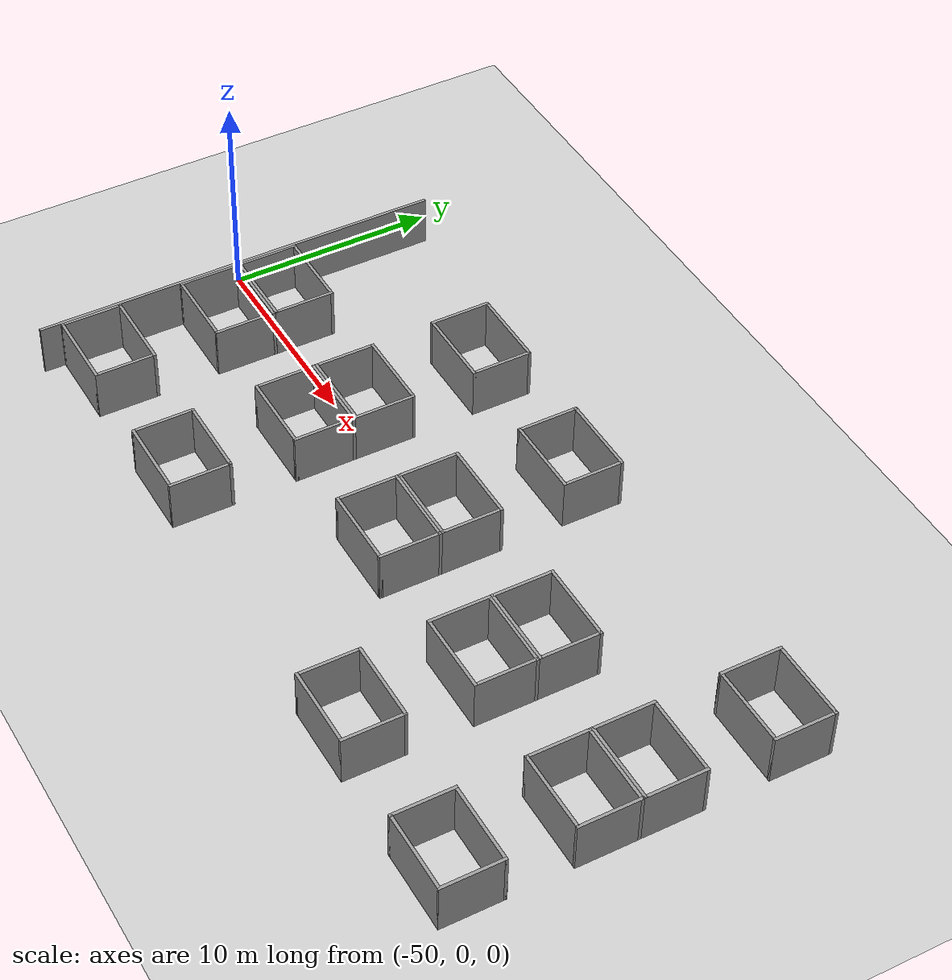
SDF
<sdf version="1.6">
 <world name="default">
  <model name="ground_plane">
   <static>1</static>
   <link name="link">
    <collision name="collision">
     <geometry><plane><normal>0 0 1</normal><size>105 105</size></plane></geometry>
     <surface>
      <contact><collide_bitmask>65535</collide_bitmask></contact>
      <friction><ode><mu>100</mu><mu2>50</mu2></ode></friction>
     </surface>
    </collision>
    <visual name="visual">
     <cast_shadows>0</cast_shadows>
     <geometry><plane><normal>0 0 1</normal><size>105 105</size></plane></geometry>
     <material>
      <script><uri>file://media/materials/scripts/gazebo.material</uri><name>Gazebo/Grey</name></script>
     </material>
    </visual>
   </link>
  </model>
  <model name="wall_v20m_0">
   <pose>-48.4193 -0.726683 0 0 -0 0</pose>
   <link name="Wall_35">
    <collision name="Wall_35_Collision">
     <geometry><box><size>20 0.15 2.5</size></box></geometry>
     <pose>0 0 1.25 0 -0 0</pose>
    </collision>
    <visual name="Wall_35_Visual">
     <pose>0 0 1.25 0 -0 0</pose>
     <geometry><box><size>20 0.15 2.5</size></box></geometry>
     <material>
      <script><uri>file://media/materials/scripts/gazebo.material</uri><name>Gazebo/Grey</name></script>
      <ambient>1 1 1 1</ambient>
     </material>
     <meta><layer>0</layer></meta>
    </visual>
    <pose>0 -0 0 0 -0 -1.5708</pose>
   </link>
   <static>1</static>
  </model>
  <model name="base3x4_40">
   <pose>-46.3508 -8.23033 0 0 -0 0</pose>
   <link name="Wall_18">
    <collision name="Wall_18_Collision">
     <geometry><box><size>3 0.15 2.5</size></box></geometry>
     <pose>0 0 1.25 0 -0 0</pose>
    </collision>
    <visual name="Wall_18_Visual">
     <pose>0 0 1.25 0 -0 0</pose>
     <geometry><box><size>3 0.15 2.5</size></box></geometry>
     <material>
      <script><uri>file://media/materials/scripts/gazebo.material</uri><name>Gazebo/Grey</name></script>
      <ambient>1 1 1 1</ambient>
     </material>
     <meta><layer>0</layer></meta>
    </visual>
    <pose>-1.925 -0 0 0 -0 -1.5708</pose>
   </link>
   <link name="Wall_19">
    <collision name="Wall_19_Collision">
     <geometry><box><size>4 0.15 2.5</size></box></geometry>
     <pose>0 0 1.25 0 -0 0</pose>
    </collision>
    <visual name="Wall_19_Visual">
     <pose>0 0 1.25 0 -0 0</pose>
     <geometry><box><size>4 0.15 2.5</size></box></geometry>
     <material>
      <script><uri>file://media/materials/scripts/gazebo.material</uri><name>Gazebo/Grey</name></script>
      <ambient>1 1 1 1</ambient>
     </material>
     <meta><layer>0</layer></meta>
    </visual>
    <pose>-0 -1.425 0 0 -0 0</pose>
   </link>
   <link name="Wall_20">
    <collision name="Wall_20_Collision">
     <geometry><box><size>3 0.15 2.5</size></box></geometry>
     <pose>0 0 1.25 0 -0 0</pose>
    </collision>
    <visual name="Wall_20_Visual">
     <pose>0 0 1.25 0 -0 0</pose>
     <geometry><box><size>3 0.15 2.5</size></box></geometry>
     <material>
      <script><uri>file://media/materials/scripts/gazebo.material</uri><name>Gazebo/Grey</name></script>
      <ambient>1 1 1 1</ambient>
     </material>
     <meta><layer>0</layer></meta>
    </visual>
    <pose>1.925 -0 0 0 -0 1.5708</pose>
   </link>
   <link name="Wall_21">
    <collision name="Wall_21_Collision">
     <geometry><box><size>4 0.15 2.5</size></box></geometry>
     <pose>0 0 1.25 0 -0 0</pose>
    </collision>
    <visual name="Wall_21_Visual">
     <pose>0 0 1.25 0 -0 0</pose>
     <geometry><box><size>4 0.15 2.5</size></box></geometry>
     <material>
      <script><uri>file://media/materials/scripts/gazebo.material</uri><name>Gazebo/Grey</name></script>
      <ambient>1 1 1 1</ambient>
     </material>
     <meta><layer>0</layer></meta>
    </visual>
    <pose>-0 1.425 0 0 -0 3.14159</pose>
   </link>
   <static>1</static>
  </model>
  <model name="base3x4_42">
   <pose>-46.3729 -2.24361 0 0 -0 0</pose>
   <link name="Wall_18">
    <collision name="Wall_18_Collision">
     <geometry><box><size>3 0.15 2.5</size></box></geometry>
     <pose>0 0 1.25 0 -0 0</pose>
    </collision>
    <visual name="Wall_18_Visual">
     <pose>0 0 1.25 0 -0 0</pose>
     <geometry><box><size>3 0.15 2.5</size></box></geometry>
     <material>
      <script><uri>file://media/materials/scripts/gazebo.material</uri><name>Gazebo/Grey</name></script>
      <ambient>1 1 1 1</ambient>
     </material>
     <meta><layer>0</layer></meta>
    </visual>
    <pose>-1.925 -0 0 0 -0 -1.5708</pose>
   </link>
   <link name="Wall_19">
    <collision name="Wall_19_Collision">
     <geometry><box><size>4 0.15 2.5</size></box></geometry>
     <pose>0 0 1.25 0 -0 0</pose>
    </collision>
    <visual name="Wall_19_Visual">
     <pose>0 0 1.25 0 -0 0</pose>
     <geometry><box><size>4 0.15 2.5</size></box></geometry>
     <material>
      <script><uri>file://media/materials/scripts/gazebo.material</uri><name>Gazebo/Grey</name></script>
      <ambient>1 1 1 1</ambient>
     </material>
     <meta><layer>0</layer></meta>
    </visual>
    <pose>-0 -1.425 0 0 -0 0</pose>
   </link>
   <link name="Wall_20">
    <collision name="Wall_20_Collision">
     <geometry><box><size>3 0.15 2.5</size></box></geometry>
     <pose>0 0 1.25 0 -0 0</pose>
    </collision>
    <visual name="Wall_20_Visual">
     <pose>0 0 1.25 0 -0 0</pose>
     <geometry><box><size>3 0.15 2.5</size></box></geometry>
     <material>
      <script><uri>file://media/materials/scripts/gazebo.material</uri><name>Gazebo/Grey</name></script>
      <ambient>1 1 1 1</ambient>
     </material>
     <meta><layer>0</layer></meta>
    </visual>
    <pose>1.925 -0 0 0 -0 1.5708</pose>
   </link>
   <link name="Wall_21">
    <collision name="Wall_21_Collision">
     <geometry><box><size>4 0.15 2.5</size></box></geometry>
     <pose>0 0 1.25 0 -0 0</pose>
    </collision>
    <visual name="Wall_21_Visual">
     <pose>0 0 1.25 0 -0 0</pose>
     <geometry><box><size>4 0.15 2.5</size></box></geometry>
     <material>
      <script><uri>file://media/materials/scripts/gazebo.material</uri><name>Gazebo/Grey</name></script>
      <ambient>1 1 1 1</ambient>
     </material>
     <meta><layer>0</layer></meta>
    </visual>
    <pose>-0 1.425 0 0 -0 3.14159</pose>
   </link>
   <static>1</static>
  </model>
  <model name="base3x4_43">
   <pose>-46.3734 0.757545 0 0 -0 0</pose>
   <link name="Wall_18">
    <collision name="Wall_18_Collision">
     <geometry><box><size>3 0.15 2.5</size></box></geometry>
     <pose>0 0 1.25 0 -0 0</pose>
    </collision>
    <visual name="Wall_18_Visual">
     <pose>0 0 1.25 0 -0 0</pose>
     <geometry><box><size>3 0.15 2.5</size></box></geometry>
     <material>
      <script><uri>file://media/materials/scripts/gazebo.material</uri><name>Gazebo/Grey</name></script>
      <ambient>1 1 1 1</ambient>
     </material>
     <meta><layer>0</layer></meta>
    </visual>
    <pose>-1.925 -0 0 0 -0 -1.5708</pose>
   </link>
   <link name="Wall_19">
    <collision name="Wall_19_Collision">
     <geometry><box><size>4 0.15 2.5</size></box></geometry>
     <pose>0 0 1.25 0 -0 0</pose>
    </collision>
    <visual name="Wall_19_Visual">
     <pose>0 0 1.25 0 -0 0</pose>
     <geometry><box><size>4 0.15 2.5</size></box></geometry>
     <material>
      <script><uri>file://media/materials/scripts/gazebo.material</uri><name>Gazebo/Grey</name></script>
      <ambient>1 1 1 1</ambient>
     </material>
     <meta><layer>0</layer></meta>
    </visual>
    <pose>-0 -1.425 0 0 -0 0</pose>
   </link>
   <link name="Wall_20">
    <collision name="Wall_20_Collision">
     <geometry><box><size>3 0.15 2.5</size></box></geometry>
     <pose>0 0 1.25 0 -0 0</pose>
    </collision>
    <visual name="Wall_20_Visual">
     <pose>0 0 1.25 0 -0 0</pose>
     <geometry><box><size>3 0.15 2.5</size></box></geometry>
     <material>
      <script><uri>file://media/materials/scripts/gazebo.material</uri><name>Gazebo/Grey</name></script>
      <ambient>1 1 1 1</ambient>
     </material>
     <meta><layer>0</layer></meta>
    </visual>
    <pose>1.925 -0 0 0 -0 1.5708</pose>
   </link>
   <link name="Wall_21">
    <collision name="Wall_21_Collision">
     <geometry><box><size>4 0.15 2.5</size></box></geometry>
     <pose>0 0 1.25 0 -0 0</pose>
    </collision>
    <visual name="Wall_21_Visual">
     <pose>0 0 1.25 0 -0 0</pose>
     <geometry><box><size>4 0.15 2.5</size></box></geometry>
     <material>
      <script><uri>file://media/materials/scripts/gazebo.material</uri><name>Gazebo/Grey</name></script>
      <ambient>1 1 1 1</ambient>
     </material>
     <meta><layer>0</layer></meta>
    </visual>
    <pose>-0 1.425 0 0 -0 3.14159</pose>
   </link>
   <static>1</static>
  </model>
  <model name="base3x4_60">
   <pose>-38.3722 -8.24435 0 0 -0 0</pose>
   <link name="Wall_18">
    <collision name="Wall_18_Collision">
     <geometry><box><size>3 0.15 2.5</size></box></geometry>
     <pose>0 0 1.25 0 -0 0</pose>
    </collision>
    <visual name="Wall_18_Visual">
     <pose>0 0 1.25 0 -0 0</pose>
     <geometry><box><size>3 0.15 2.5</size></box></geometry>
     <material>
      <script><uri>file://media/materials/scripts/gazebo.material</uri><name>Gazebo/Grey</name></script>
      <ambient>1 1 1 1</ambient>
     </material>
     <meta><layer>0</layer></meta>
    </visual>
    <pose>-1.925 -0 0 0 -0 -1.5708</pose>
   </link>
   <link name="Wall_19">
    <collision name="Wall_19_Collision">
     <geometry><box><size>4 0.15 2.5</size></box></geometry>
     <pose>0 0 1.25 0 -0 0</pose>
    </collision>
    <visual name="Wall_19_Visual">
     <pose>0 0 1.25 0 -0 0</pose>
     <geometry><box><size>4 0.15 2.5</size></box></geometry>
     <material>
      <script><uri>file://media/materials/scripts/gazebo.material</uri><name>Gazebo/Grey</name></script>
      <ambient>1 1 1 1</ambient>
     </material>
     <meta><layer>0</layer></meta>
    </visual>
    <pose>-0 -1.425 0 0 -0 0</pose>
   </link>
   <link name="Wall_20">
    <collision name="Wall_20_Collision">
     <geometry><box><size>3 0.15 2.5</size></box></geometry>
     <pose>0 0 1.25 0 -0 0</pose>
    </collision>
    <visual name="Wall_20_Visual">
     <pose>0 0 1.25 0 -0 0</pose>
     <geometry><box><size>3 0.15 2.5</size></box></geometry>
     <material>
      <script><uri>file://media/materials/scripts/gazebo.material</uri><name>Gazebo/Grey</name></script>
      <ambient>1 1 1 1</ambient>
     </material>
     <meta><layer>0</layer></meta>
    </visual>
    <pose>1.925 -0 0 0 -0 1.5708</pose>
   </link>
   <link name="Wall_21">
    <collision name="Wall_21_Collision">
     <geometry><box><size>4 0.15 2.5</size></box></geometry>
     <pose>0 0 1.25 0 -0 0</pose>
    </collision>
    <visual name="Wall_21_Visual">
     <pose>0 0 1.25 0 -0 0</pose>
     <geometry><box><size>4 0.15 2.5</size></box></geometry>
     <material>
      <script><uri>file://media/materials/scripts/gazebo.material</uri><name>Gazebo/Grey</name></script>
      <ambient>1 1 1 1</ambient>
     </material>
     <meta><layer>0</layer></meta>
    </visual>
    <pose>-0 1.425 0 0 -0 3.14159</pose>
   </link>
   <static>1</static>
  </model>
  <model name="base3x4_62">
   <pose>-38.3835 -2.2467 0 0 -0 0</pose>
   <link name="Wall_18">
    <collision name="Wall_18_Collision">
     <geometry><box><size>3 0.15 2.5</size></box></geometry>
     <pose>0 0 1.25 0 -0 0</pose>
    </collision>
    <visual name="Wall_18_Visual">
     <pose>0 0 1.25 0 -0 0</pose>
     <geometry><box><size>3 0.15 2.5</size></box></geometry>
     <material>
      <script><uri>file://media/materials/scripts/gazebo.material</uri><name>Gazebo/Grey</name></script>
      <ambient>1 1 1 1</ambient>
     </material>
     <meta><layer>0</layer></meta>
    </visual>
    <pose>-1.925 -0 0 0 -0 -1.5708</pose>
   </link>
   <link name="Wall_19">
    <collision name="Wall_19_Collision">
     <geometry><box><size>4 0.15 2.5</size></box></geometry>
     <pose>0 0 1.25 0 -0 0</pose>
    </collision>
    <visual name="Wall_19_Visual">
     <pose>0 0 1.25 0 -0 0</pose>
     <geometry><box><size>4 0.15 2.5</size></box></geometry>
     <material>
      <script><uri>file://media/materials/scripts/gazebo.material</uri><name>Gazebo/Grey</name></script>
      <ambient>1 1 1 1</ambient>
     </material>
     <meta><layer>0</layer></meta>
    </visual>
    <pose>-0 -1.425 0 0 -0 0</pose>
   </link>
   <link name="Wall_20">
    <collision name="Wall_20_Collision">
     <geometry><box><size>3 0.15 2.5</size></box></geometry>
     <pose>0 0 1.25 0 -0 0</pose>
    </collision>
    <visual name="Wall_20_Visual">
     <pose>0 0 1.25 0 -0 0</pose>
     <geometry><box><size>3 0.15 2.5</size></box></geometry>
     <material>
      <script><uri>file://media/materials/scripts/gazebo.material</uri><name>Gazebo/Grey</name></script>
      <ambient>1 1 1 1</ambient>
     </material>
     <meta><layer>0</layer></meta>
    </visual>
    <pose>1.925 -0 0 0 -0 1.5708</pose>
   </link>
   <link name="Wall_21">
    <collision name="Wall_21_Collision">
     <geometry><box><size>4 0.15 2.5</size></box></geometry>
     <pose>0 0 1.25 0 -0 0</pose>
    </collision>
    <visual name="Wall_21_Visual">
     <pose>0 0 1.25 0 -0 0</pose>
     <geometry><box><size>4 0.15 2.5</size></box></geometry>
     <material>
      <script><uri>file://media/materials/scripts/gazebo.material</uri><name>Gazebo/Grey</name></script>
      <ambient>1 1 1 1</ambient>
     </material>
     <meta><layer>0</layer></meta>
    </visual>
    <pose>-0 1.425 0 0 -0 3.14159</pose>
   </link>
   <static>1</static>
  </model>
  <model name="base3x4_63">
   <pose>-38.384 0.75217 0 0 -0 0</pose>
   <link name="Wall_18">
    <collision name="Wall_18_Collision">
     <geometry><box><size>3 0.15 2.5</size></box></geometry>
     <pose>0 0 1.25 0 -0 0</pose>
    </collision>
    <visual name="Wall_18_Visual">
     <pose>0 0 1.25 0 -0 0</pose>
     <geometry><box><size>3 0.15 2.5</size></box></geometry>
     <material>
      <script><uri>file://media/materials/scripts/gazebo.material</uri><name>Gazebo/Grey</name></script>
      <ambient>1 1 1 1</ambient>
     </material>
     <meta><layer>0</layer></meta>
    </visual>
    <pose>-1.925 -0 0 0 -0 -1.5708</pose>
   </link>
   <link name="Wall_19">
    <collision name="Wall_19_Collision">
     <geometry><box><size>4 0.15 2.5</size></box></geometry>
     <pose>0 0 1.25 0 -0 0</pose>
    </collision>
    <visual name="Wall_19_Visual">
     <pose>0 0 1.25 0 -0 0</pose>
     <geometry><box><size>4 0.15 2.5</size></box></geometry>
     <material>
      <script><uri>file://media/materials/scripts/gazebo.material</uri><name>Gazebo/Grey</name></script>
      <ambient>1 1 1 1</ambient>
     </material>
     <meta><layer>0</layer></meta>
    </visual>
    <pose>-0 -1.425 0 0 -0 0</pose>
   </link>
   <link name="Wall_20">
    <collision name="Wall_20_Collision">
     <geometry><box><size>3 0.15 2.5</size></box></geometry>
     <pose>0 0 1.25 0 -0 0</pose>
    </collision>
    <visual name="Wall_20_Visual">
     <pose>0 0 1.25 0 -0 0</pose>
     <geometry><box><size>3 0.15 2.5</size></box></geometry>
     <material>
      <script><uri>file://media/materials/scripts/gazebo.material</uri><name>Gazebo/Grey</name></script>
      <ambient>1 1 1 1</ambient>
     </material>
     <meta><layer>0</layer></meta>
    </visual>
    <pose>1.925 -0 0 0 -0 1.5708</pose>
   </link>
   <link name="Wall_21">
    <collision name="Wall_21_Collision">
     <geometry><box><size>4 0.15 2.5</size></box></geometry>
     <pose>0 0 1.25 0 -0 0</pose>
    </collision>
    <visual name="Wall_21_Visual">
     <pose>0 0 1.25 0 -0 0</pose>
     <geometry><box><size>4 0.15 2.5</size></box></geometry>
     <material>
      <script><uri>file://media/materials/scripts/gazebo.material</uri><name>Gazebo/Grey</name></script>
      <ambient>1 1 1 1</ambient>
     </material>
     <meta><layer>0</layer></meta>
    </visual>
    <pose>-0 1.425 0 0 -0 3.14159</pose>
   </link>
   <static>1</static>
  </model>
  <model name="base3x4_65">
   <pose>-38.4437 6.73627 0 0 -0 0</pose>
   <link name="Wall_18">
    <collision name="Wall_18_Collision">
     <geometry><box><size>3 0.15 2.5</size></box></geometry>
     <pose>0 0 1.25 0 -0 0</pose>
    </collision>
    <visual name="Wall_18_Visual">
     <pose>0 0 1.25 0 -0 0</pose>
     <geometry><box><size>3 0.15 2.5</size></box></geometry>
     <material>
      <script><uri>file://media/materials/scripts/gazebo.material</uri><name>Gazebo/Grey</name></script>
      <ambient>1 1 1 1</ambient>
     </material>
     <meta><layer>0</layer></meta>
    </visual>
    <pose>-1.925 -0 0 0 -0 -1.5708</pose>
   </link>
   <link name="Wall_19">
    <collision name="Wall_19_Collision">
     <geometry><box><size>4 0.15 2.5</size></box></geometry>
     <pose>0 0 1.25 0 -0 0</pose>
    </collision>
    <visual name="Wall_19_Visual">
     <pose>0 0 1.25 0 -0 0</pose>
     <geometry><box><size>4 0.15 2.5</size></box></geometry>
     <material>
      <script><uri>file://media/materials/scripts/gazebo.material</uri><name>Gazebo/Grey</name></script>
      <ambient>1 1 1 1</ambient>
     </material>
     <meta><layer>0</layer></meta>
    </visual>
    <pose>-0 -1.425 0 0 -0 0</pose>
   </link>
   <link name="Wall_20">
    <collision name="Wall_20_Collision">
     <geometry><box><size>3 0.15 2.5</size></box></geometry>
     <pose>0 0 1.25 0 -0 0</pose>
    </collision>
    <visual name="Wall_20_Visual">
     <pose>0 0 1.25 0 -0 0</pose>
     <geometry><box><size>3 0.15 2.5</size></box></geometry>
     <material>
      <script><uri>file://media/materials/scripts/gazebo.material</uri><name>Gazebo/Grey</name></script>
      <ambient>1 1 1 1</ambient>
     </material>
     <meta><layer>0</layer></meta>
    </visual>
    <pose>1.925 -0 0 0 -0 1.5708</pose>
   </link>
   <link name="Wall_21">
    <collision name="Wall_21_Collision">
     <geometry><box><size>4 0.15 2.5</size></box></geometry>
     <pose>0 0 1.25 0 -0 0</pose>
    </collision>
    <visual name="Wall_21_Visual">
     <pose>0 0 1.25 0 -0 0</pose>
     <geometry><box><size>4 0.15 2.5</size></box></geometry>
     <material>
      <script><uri>file://media/materials/scripts/gazebo.material</uri><name>Gazebo/Grey</name></script>
      <ambient>1 1 1 1</ambient>
     </material>
     <meta><layer>0</layer></meta>
    </visual>
    <pose>-0 1.425 0 0 -0 3.14159</pose>
   </link>
   <static>1</static>
  </model>
  <model name="base3x4_6">
   <pose>-30.4053 -2.27913 0 0 -0 0</pose>
   <link name="Wall_18">
    <collision name="Wall_18_Collision">
     <geometry><box><size>3 0.15 2.5</size></box></geometry>
     <pose>0 0 1.25 0 -0 0</pose>
    </collision>
    <visual name="Wall_18_Visual">
     <pose>0 0 1.25 0 -0 0</pose>
     <geometry><box><size>3 0.15 2.5</size></box></geometry>
     <material>
      <script><uri>file://media/materials/scripts/gazebo.material</uri><name>Gazebo/Grey</name></script>
      <ambient>1 1 1 1</ambient>
     </material>
     <meta><layer>0</layer></meta>
    </visual>
    <pose>-1.925 -0 0 0 -0 -1.5708</pose>
   </link>
   <link name="Wall_19">
    <collision name="Wall_19_Collision">
     <geometry><box><size>4 0.15 2.5</size></box></geometry>
     <pose>0 0 1.25 0 -0 0</pose>
    </collision>
    <visual name="Wall_19_Visual">
     <pose>0 0 1.25 0 -0 0</pose>
     <geometry><box><size>4 0.15 2.5</size></box></geometry>
     <material>
      <script><uri>file://media/materials/scripts/gazebo.material</uri><name>Gazebo/Grey</name></script>
      <ambient>1 1 1 1</ambient>
     </material>
     <meta><layer>0</layer></meta>
    </visual>
    <pose>-0 -1.425 0 0 -0 0</pose>
   </link>
   <link name="Wall_20">
    <collision name="Wall_20_Collision">
     <geometry><box><size>3 0.15 2.5</size></box></geometry>
     <pose>0 0 1.25 0 -0 0</pose>
    </collision>
    <visual name="Wall_20_Visual">
     <pose>0 0 1.25 0 -0 0</pose>
     <geometry><box><size>3 0.15 2.5</size></box></geometry>
     <material>
      <script><uri>file://media/materials/scripts/gazebo.material</uri><name>Gazebo/Grey</name></script>
      <ambient>1 1 1 1</ambient>
     </material>
     <meta><layer>0</layer></meta>
    </visual>
    <pose>1.925 -0 0 0 -0 1.5708</pose>
   </link>
   <link name="Wall_21">
    <collision name="Wall_21_Collision">
     <geometry><box><size>4 0.15 2.5</size></box></geometry>
     <pose>0 0 1.25 0 -0 0</pose>
    </collision>
    <visual name="Wall_21_Visual">
     <pose>0 0 1.25 0 -0 0</pose>
     <geometry><box><size>4 0.15 2.5</size></box></geometry>
     <material>
      <script><uri>file://media/materials/scripts/gazebo.material</uri><name>Gazebo/Grey</name></script>
      <ambient>1 1 1 1</ambient>
     </material>
     <meta><layer>0</layer></meta>
    </visual>
    <pose>-0 1.425 0 0 -0 3.14159</pose>
   </link>
   <static>1</static>
  </model>
  <model name="base3x4_8">
   <pose>-30.4105 0.701698 0 0 -0 0</pose>
   <link name="Wall_18">
    <collision name="Wall_18_Collision">
     <geometry><box><size>3 0.15 2.5</size></box></geometry>
     <pose>0 0 1.25 0 -0 0</pose>
    </collision>
    <visual name="Wall_18_Visual">
     <pose>0 0 1.25 0 -0 0</pose>
     <geometry><box><size>3 0.15 2.5</size></box></geometry>
     <material>
      <script><uri>file://media/materials/scripts/gazebo.material</uri><name>Gazebo/Grey</name></script>
      <ambient>1 1 1 1</ambient>
     </material>
     <meta><layer>0</layer></meta>
    </visual>
    <pose>-1.925 -0 0 0 -0 -1.5708</pose>
   </link>
   <link name="Wall_19">
    <collision name="Wall_19_Collision">
     <geometry><box><size>4 0.15 2.5</size></box></geometry>
     <pose>0 0 1.25 0 -0 0</pose>
    </collision>
    <visual name="Wall_19_Visual">
     <pose>0 0 1.25 0 -0 0</pose>
     <geometry><box><size>4 0.15 2.5</size></box></geometry>
     <material>
      <script><uri>file://media/materials/scripts/gazebo.material</uri><name>Gazebo/Grey</name></script>
      <ambient>1 1 1 1</ambient>
     </material>
     <meta><layer>0</layer></meta>
    </visual>
    <pose>-0 -1.425 0 0 -0 0</pose>
   </link>
   <link name="Wall_20">
    <collision name="Wall_20_Collision">
     <geometry><box><size>3 0.15 2.5</size></box></geometry>
     <pose>0 0 1.25 0 -0 0</pose>
    </collision>
    <visual name="Wall_20_Visual">
     <pose>0 0 1.25 0 -0 0</pose>
     <geometry><box><size>3 0.15 2.5</size></box></geometry>
     <material>
      <script><uri>file://media/materials/scripts/gazebo.material</uri><name>Gazebo/Grey</name></script>
      <ambient>1 1 1 1</ambient>
     </material>
     <meta><layer>0</layer></meta>
    </visual>
    <pose>1.925 -0 0 0 -0 1.5708</pose>
   </link>
   <link name="Wall_21">
    <collision name="Wall_21_Collision">
     <geometry><box><size>4 0.15 2.5</size></box></geometry>
     <pose>0 0 1.25 0 -0 0</pose>
    </collision>
    <visual name="Wall_21_Visual">
     <pose>0 0 1.25 0 -0 0</pose>
     <geometry><box><size>4 0.15 2.5</size></box></geometry>
     <material>
      <script><uri>file://media/materials/scripts/gazebo.material</uri><name>Gazebo/Grey</name></script>
      <ambient>1 1 1 1</ambient>
     </material>
     <meta><layer>0</layer></meta>
    </visual>
    <pose>-0 1.425 0 0 -0 3.14159</pose>
   </link>
   <static>1</static>
  </model>
  <model name="base3x4_13">
   <pose>-30.4247 6.69734 0 0 -0 0</pose>
   <link name="Wall_18">
    <collision name="Wall_18_Collision">
     <geometry><box><size>3 0.15 2.5</size></box></geometry>
     <pose>0 0 1.25 0 -0 0</pose>
    </collision>
    <visual name="Wall_18_Visual">
     <pose>0 0 1.25 0 -0 0</pose>
     <geometry><box><size>3 0.15 2.5</size></box></geometry>
     <material>
      <script><uri>file://media/materials/scripts/gazebo.material</uri><name>Gazebo/Grey</name></script>
      <ambient>1 1 1 1</ambient>
     </material>
     <meta><layer>0</layer></meta>
    </visual>
    <pose>-1.925 -0 0 0 -0 -1.5708</pose>
   </link>
   <link name="Wall_19">
    <collision name="Wall_19_Collision">
     <geometry><box><size>4 0.15 2.5</size></box></geometry>
     <pose>0 0 1.25 0 -0 0</pose>
    </collision>
    <visual name="Wall_19_Visual">
     <pose>0 0 1.25 0 -0 0</pose>
     <geometry><box><size>4 0.15 2.5</size></box></geometry>
     <material>
      <script><uri>file://media/materials/scripts/gazebo.material</uri><name>Gazebo/Grey</name></script>
      <ambient>1 1 1 1</ambient>
     </material>
     <meta><layer>0</layer></meta>
    </visual>
    <pose>-0 -1.425 0 0 -0 0</pose>
   </link>
   <link name="Wall_20">
    <collision name="Wall_20_Collision">
     <geometry><box><size>3 0.15 2.5</size></box></geometry>
     <pose>0 0 1.25 0 -0 0</pose>
    </collision>
    <visual name="Wall_20_Visual">
     <pose>0 0 1.25 0 -0 0</pose>
     <geometry><box><size>3 0.15 2.5</size></box></geometry>
     <material>
      <script><uri>file://media/materials/scripts/gazebo.material</uri><name>Gazebo/Grey</name></script>
      <ambient>1 1 1 1</ambient>
     </material>
     <meta><layer>0</layer></meta>
    </visual>
    <pose>1.925 -0 0 0 -0 1.5708</pose>
   </link>
   <link name="Wall_21">
    <collision name="Wall_21_Collision">
     <geometry><box><size>4 0.15 2.5</size></box></geometry>
     <pose>0 0 1.25 0 -0 0</pose>
    </collision>
    <visual name="Wall_21_Visual">
     <pose>0 0 1.25 0 -0 0</pose>
     <geometry><box><size>4 0.15 2.5</size></box></geometry>
     <material>
      <script><uri>file://media/materials/scripts/gazebo.material</uri><name>Gazebo/Grey</name></script>
      <ambient>1 1 1 1</ambient>
     </material>
     <meta><layer>0</layer></meta>
    </visual>
    <pose>-0 1.425 0 0 -0 3.14159</pose>
   </link>
   <static>1</static>
  </model>
  <model name="base3x4_68">
   <pose>-22.41 -8.21789 0 0 -0 0</pose>
   <link name="Wall_18">
    <collision name="Wall_18_Collision">
     <geometry><box><size>3 0.15 2.5</size></box></geometry>
     <pose>0 0 1.25 0 -0 0</pose>
    </collision>
    <visual name="Wall_18_Visual">
     <pose>0 0 1.25 0 -0 0</pose>
     <geometry><box><size>3 0.15 2.5</size></box></geometry>
     <material>
      <script><uri>file://media/materials/scripts/gazebo.material</uri><name>Gazebo/Grey</name></script>
      <ambient>1 1 1 1</ambient>
     </material>
     <meta><layer>0</layer></meta>
    </visual>
    <pose>-1.925 -0 0 0 -0 -1.5708</pose>
   </link>
   <link name="Wall_19">
    <collision name="Wall_19_Collision">
     <geometry><box><size>4 0.15 2.5</size></box></geometry>
     <pose>0 0 1.25 0 -0 0</pose>
    </collision>
    <visual name="Wall_19_Visual">
     <pose>0 0 1.25 0 -0 0</pose>
     <geometry><box><size>4 0.15 2.5</size></box></geometry>
     <material>
      <script><uri>file://media/materials/scripts/gazebo.material</uri><name>Gazebo/Grey</name></script>
      <ambient>1 1 1 1</ambient>
     </material>
     <meta><layer>0</layer></meta>
    </visual>
    <pose>-0 -1.425 0 0 -0 0</pose>
   </link>
   <link name="Wall_20">
    <collision name="Wall_20_Collision">
     <geometry><box><size>3 0.15 2.5</size></box></geometry>
     <pose>0 0 1.25 0 -0 0</pose>
    </collision>
    <visual name="Wall_20_Visual">
     <pose>0 0 1.25 0 -0 0</pose>
     <geometry><box><size>3 0.15 2.5</size></box></geometry>
     <material>
      <script><uri>file://media/materials/scripts/gazebo.material</uri><name>Gazebo/Grey</name></script>
      <ambient>1 1 1 1</ambient>
     </material>
     <meta><layer>0</layer></meta>
    </visual>
    <pose>1.925 -0 0 0 -0 1.5708</pose>
   </link>
   <link name="Wall_21">
    <collision name="Wall_21_Collision">
     <geometry><box><size>4 0.15 2.5</size></box></geometry>
     <pose>0 0 1.25 0 -0 0</pose>
    </collision>
    <visual name="Wall_21_Visual">
     <pose>0 0 1.25 0 -0 0</pose>
     <geometry><box><size>4 0.15 2.5</size></box></geometry>
     <material>
      <script><uri>file://media/materials/scripts/gazebo.material</uri><name>Gazebo/Grey</name></script>
      <ambient>1 1 1 1</ambient>
     </material>
     <meta><layer>0</layer></meta>
    </visual>
    <pose>-0 1.425 0 0 -0 3.14159</pose>
   </link>
   <static>1</static>
  </model>
  <model name="base3x4_70">
   <pose>-22.4069 -2.22304 0 0 -0 0</pose>
   <link name="Wall_18">
    <collision name="Wall_18_Collision">
     <geometry><box><size>3 0.15 2.5</size></box></geometry>
     <pose>0 0 1.25 0 -0 0</pose>
    </collision>
    <visual name="Wall_18_Visual">
     <pose>0 0 1.25 0 -0 0</pose>
     <geometry><box><size>3 0.15 2.5</size></box></geometry>
     <material>
      <script><uri>file://media/materials/scripts/gazebo.material</uri><name>Gazebo/Grey</name></script>
      <ambient>1 1 1 1</ambient>
     </material>
     <meta><layer>0</layer></meta>
    </visual>
    <pose>-1.925 -0 0 0 -0 -1.5708</pose>
   </link>
   <link name="Wall_19">
    <collision name="Wall_19_Collision">
     <geometry><box><size>4 0.15 2.5</size></box></geometry>
     <pose>0 0 1.25 0 -0 0</pose>
    </collision>
    <visual name="Wall_19_Visual">
     <pose>0 0 1.25 0 -0 0</pose>
     <geometry><box><size>4 0.15 2.5</size></box></geometry>
     <material>
      <script><uri>file://media/materials/scripts/gazebo.material</uri><name>Gazebo/Grey</name></script>
      <ambient>1 1 1 1</ambient>
     </material>
     <meta><layer>0</layer></meta>
    </visual>
    <pose>-0 -1.425 0 0 -0 0</pose>
   </link>
   <link name="Wall_20">
    <collision name="Wall_20_Collision">
     <geometry><box><size>3 0.15 2.5</size></box></geometry>
     <pose>0 0 1.25 0 -0 0</pose>
    </collision>
    <visual name="Wall_20_Visual">
     <pose>0 0 1.25 0 -0 0</pose>
     <geometry><box><size>3 0.15 2.5</size></box></geometry>
     <material>
      <script><uri>file://media/materials/scripts/gazebo.material</uri><name>Gazebo/Grey</name></script>
      <ambient>1 1 1 1</ambient>
     </material>
     <meta><layer>0</layer></meta>
    </visual>
    <pose>1.925 -0 0 0 -0 1.5708</pose>
   </link>
   <link name="Wall_21">
    <collision name="Wall_21_Collision">
     <geometry><box><size>4 0.15 2.5</size></box></geometry>
     <pose>0 0 1.25 0 -0 0</pose>
    </collision>
    <visual name="Wall_21_Visual">
     <pose>0 0 1.25 0 -0 0</pose>
     <geometry><box><size>4 0.15 2.5</size></box></geometry>
     <material>
      <script><uri>file://media/materials/scripts/gazebo.material</uri><name>Gazebo/Grey</name></script>
      <ambient>1 1 1 1</ambient>
     </material>
     <meta><layer>0</layer></meta>
    </visual>
    <pose>-0 1.425 0 0 -0 3.14159</pose>
   </link>
   <static>1</static>
  </model>
  <model name="base3x4_71">
   <pose>-22.4105 0.763278 0 0 -0 0</pose>
   <link name="Wall_18">
    <collision name="Wall_18_Collision">
     <geometry><box><size>3 0.15 2.5</size></box></geometry>
     <pose>0 0 1.25 0 -0 0</pose>
    </collision>
    <visual name="Wall_18_Visual">
     <pose>0 0 1.25 0 -0 0</pose>
     <geometry><box><size>3 0.15 2.5</size></box></geometry>
     <material>
      <script><uri>file://media/materials/scripts/gazebo.material</uri><name>Gazebo/Grey</name></script>
      <ambient>1 1 1 1</ambient>
     </material>
     <meta><layer>0</layer></meta>
    </visual>
    <pose>-1.925 -0 0 0 -0 -1.5708</pose>
   </link>
   <link name="Wall_19">
    <collision name="Wall_19_Collision">
     <geometry><box><size>4 0.15 2.5</size></box></geometry>
     <pose>0 0 1.25 0 -0 0</pose>
    </collision>
    <visual name="Wall_19_Visual">
     <pose>0 0 1.25 0 -0 0</pose>
     <geometry><box><size>4 0.15 2.5</size></box></geometry>
     <material>
      <script><uri>file://media/materials/scripts/gazebo.material</uri><name>Gazebo/Grey</name></script>
      <ambient>1 1 1 1</ambient>
     </material>
     <meta><layer>0</layer></meta>
    </visual>
    <pose>-0 -1.425 0 0 -0 0</pose>
   </link>
   <link name="Wall_20">
    <collision name="Wall_20_Collision">
     <geometry><box><size>3 0.15 2.5</size></box></geometry>
     <pose>0 0 1.25 0 -0 0</pose>
    </collision>
    <visual name="Wall_20_Visual">
     <pose>0 0 1.25 0 -0 0</pose>
     <geometry><box><size>3 0.15 2.5</size></box></geometry>
     <material>
      <script><uri>file://media/materials/scripts/gazebo.material</uri><name>Gazebo/Grey</name></script>
      <ambient>1 1 1 1</ambient>
     </material>
     <meta><layer>0</layer></meta>
    </visual>
    <pose>1.925 -0 0 0 -0 1.5708</pose>
   </link>
   <link name="Wall_21">
    <collision name="Wall_21_Collision">
     <geometry><box><size>4 0.15 2.5</size></box></geometry>
     <pose>0 0 1.25 0 -0 0</pose>
    </collision>
    <visual name="Wall_21_Visual">
     <pose>0 0 1.25 0 -0 0</pose>
     <geometry><box><size>4 0.15 2.5</size></box></geometry>
     <material>
      <script><uri>file://media/materials/scripts/gazebo.material</uri><name>Gazebo/Grey</name></script>
      <ambient>1 1 1 1</ambient>
     </material>
     <meta><layer>0</layer></meta>
    </visual>
    <pose>-0 1.425 0 0 -0 3.14159</pose>
   </link>
   <static>1</static>
  </model>
  <model name="base3x4_76">
   <pose>-14.4158 -8.25268 0 0 -0 0</pose>
   <link name="Wall_18">
    <collision name="Wall_18_Collision">
     <geometry><box><size>3 0.15 2.5</size></box></geometry>
     <pose>0 0 1.25 0 -0 0</pose>
    </collision>
    <visual name="Wall_18_Visual">
     <pose>0 0 1.25 0 -0 0</pose>
     <geometry><box><size>3 0.15 2.5</size></box></geometry>
     <material>
      <script><uri>file://media/materials/scripts/gazebo.material</uri><name>Gazebo/Grey</name></script>
      <ambient>1 1 1 1</ambient>
     </material>
     <meta><layer>0</layer></meta>
    </visual>
    <pose>-1.925 -0 0 0 -0 -1.5708</pose>
   </link>
   <link name="Wall_19">
    <collision name="Wall_19_Collision">
     <geometry><box><size>4 0.15 2.5</size></box></geometry>
     <pose>0 0 1.25 0 -0 0</pose>
    </collision>
    <visual name="Wall_19_Visual">
     <pose>0 0 1.25 0 -0 0</pose>
     <geometry><box><size>4 0.15 2.5</size></box></geometry>
     <material>
      <script><uri>file://media/materials/scripts/gazebo.material</uri><name>Gazebo/Grey</name></script>
      <ambient>1 1 1 1</ambient>
     </material>
     <meta><layer>0</layer></meta>
    </visual>
    <pose>-0 -1.425 0 0 -0 0</pose>
   </link>
   <link name="Wall_20">
    <collision name="Wall_20_Collision">
     <geometry><box><size>3 0.15 2.5</size></box></geometry>
     <pose>0 0 1.25 0 -0 0</pose>
    </collision>
    <visual name="Wall_20_Visual">
     <pose>0 0 1.25 0 -0 0</pose>
     <geometry><box><size>3 0.15 2.5</size></box></geometry>
     <material>
      <script><uri>file://media/materials/scripts/gazebo.material</uri><name>Gazebo/Grey</name></script>
      <ambient>1 1 1 1</ambient>
     </material>
     <meta><layer>0</layer></meta>
    </visual>
    <pose>1.925 -0 0 0 -0 1.5708</pose>
   </link>
   <link name="Wall_21">
    <collision name="Wall_21_Collision">
     <geometry><box><size>4 0.15 2.5</size></box></geometry>
     <pose>0 0 1.25 0 -0 0</pose>
    </collision>
    <visual name="Wall_21_Visual">
     <pose>0 0 1.25 0 -0 0</pose>
     <geometry><box><size>4 0.15 2.5</size></box></geometry>
     <material>
      <script><uri>file://media/materials/scripts/gazebo.material</uri><name>Gazebo/Grey</name></script>
      <ambient>1 1 1 1</ambient>
     </material>
     <meta><layer>0</layer></meta>
    </visual>
    <pose>-0 1.425 0 0 -0 3.14159</pose>
   </link>
   <static>1</static>
  </model>
  <model name="base3x4_78">
   <pose>-14.4184 -2.26297 0 0 -0 0</pose>
   <link name="Wall_18">
    <collision name="Wall_18_Collision">
     <geometry><box><size>3 0.15 2.5</size></box></geometry>
     <pose>0 0 1.25 0 -0 0</pose>
    </collision>
    <visual name="Wall_18_Visual">
     <pose>0 0 1.25 0 -0 0</pose>
     <geometry><box><size>3 0.15 2.5</size></box></geometry>
     <material>
      <script><uri>file://media/materials/scripts/gazebo.material</uri><name>Gazebo/Grey</name></script>
      <ambient>1 1 1 1</ambient>
     </material>
     <meta><layer>0</layer></meta>
    </visual>
    <pose>-1.925 -0 0 0 -0 -1.5708</pose>
   </link>
   <link name="Wall_19">
    <collision name="Wall_19_Collision">
     <geometry><box><size>4 0.15 2.5</size></box></geometry>
     <pose>0 0 1.25 0 -0 0</pose>
    </collision>
    <visual name="Wall_19_Visual">
     <pose>0 0 1.25 0 -0 0</pose>
     <geometry><box><size>4 0.15 2.5</size></box></geometry>
     <material>
      <script><uri>file://media/materials/scripts/gazebo.material</uri><name>Gazebo/Grey</name></script>
      <ambient>1 1 1 1</ambient>
     </material>
     <meta><layer>0</layer></meta>
    </visual>
    <pose>-0 -1.425 0 0 -0 0</pose>
   </link>
   <link name="Wall_20">
    <collision name="Wall_20_Collision">
     <geometry><box><size>3 0.15 2.5</size></box></geometry>
     <pose>0 0 1.25 0 -0 0</pose>
    </collision>
    <visual name="Wall_20_Visual">
     <pose>0 0 1.25 0 -0 0</pose>
     <geometry><box><size>3 0.15 2.5</size></box></geometry>
     <material>
      <script><uri>file://media/materials/scripts/gazebo.material</uri><name>Gazebo/Grey</name></script>
      <ambient>1 1 1 1</ambient>
     </material>
     <meta><layer>0</layer></meta>
    </visual>
    <pose>1.925 -0 0 0 -0 1.5708</pose>
   </link>
   <link name="Wall_21">
    <collision name="Wall_21_Collision">
     <geometry><box><size>4 0.15 2.5</size></box></geometry>
     <pose>0 0 1.25 0 -0 0</pose>
    </collision>
    <visual name="Wall_21_Visual">
     <pose>0 0 1.25 0 -0 0</pose>
     <geometry><box><size>4 0.15 2.5</size></box></geometry>
     <material>
      <script><uri>file://media/materials/scripts/gazebo.material</uri><name>Gazebo/Grey</name></script>
      <ambient>1 1 1 1</ambient>
     </material>
     <meta><layer>0</layer></meta>
    </visual>
    <pose>-0 1.425 0 0 -0 3.14159</pose>
   </link>
   <static>1</static>
  </model>
  <model name="base3x4_79">
   <pose>-14.4206 0.731399 0 0 -0 0</pose>
   <link name="Wall_18">
    <collision name="Wall_18_Collision">
     <geometry><box><size>3 0.15 2.5</size></box></geometry>
     <pose>0 0 1.25 0 -0 0</pose>
    </collision>
    <visual name="Wall_18_Visual">
     <pose>0 0 1.25 0 -0 0</pose>
     <geometry><box><size>3 0.15 2.5</size></box></geometry>
     <material>
      <script><uri>file://media/materials/scripts/gazebo.material</uri><name>Gazebo/Grey</name></script>
      <ambient>1 1 1 1</ambient>
     </material>
     <meta><layer>0</layer></meta>
    </visual>
    <pose>-1.925 -0 0 0 -0 -1.5708</pose>
   </link>
   <link name="Wall_19">
    <collision name="Wall_19_Collision">
     <geometry><box><size>4 0.15 2.5</size></box></geometry>
     <pose>0 0 1.25 0 -0 0</pose>
    </collision>
    <visual name="Wall_19_Visual">
     <pose>0 0 1.25 0 -0 0</pose>
     <geometry><box><size>4 0.15 2.5</size></box></geometry>
     <material>
      <script><uri>file://media/materials/scripts/gazebo.material</uri><name>Gazebo/Grey</name></script>
      <ambient>1 1 1 1</ambient>
     </material>
     <meta><layer>0</layer></meta>
    </visual>
    <pose>-0 -1.425 0 0 -0 0</pose>
   </link>
   <link name="Wall_20">
    <collision name="Wall_20_Collision">
     <geometry><box><size>3 0.15 2.5</size></box></geometry>
     <pose>0 0 1.25 0 -0 0</pose>
    </collision>
    <visual name="Wall_20_Visual">
     <pose>0 0 1.25 0 -0 0</pose>
     <geometry><box><size>3 0.15 2.5</size></box></geometry>
     <material>
      <script><uri>file://media/materials/scripts/gazebo.material</uri><name>Gazebo/Grey</name></script>
      <ambient>1 1 1 1</ambient>
     </material>
     <meta><layer>0</layer></meta>
    </visual>
    <pose>1.925 -0 0 0 -0 1.5708</pose>
   </link>
   <link name="Wall_21">
    <collision name="Wall_21_Collision">
     <geometry><box><size>4 0.15 2.5</size></box></geometry>
     <pose>0 0 1.25 0 -0 0</pose>
    </collision>
    <visual name="Wall_21_Visual">
     <pose>0 0 1.25 0 -0 0</pose>
     <geometry><box><size>4 0.15 2.5</size></box></geometry>
     <material>
      <script><uri>file://media/materials/scripts/gazebo.material</uri><name>Gazebo/Grey</name></script>
      <ambient>1 1 1 1</ambient>
     </material>
     <meta><layer>0</layer></meta>
    </visual>
    <pose>-0 1.425 0 0 -0 3.14159</pose>
   </link>
   <static>1</static>
  </model>
  <model name="base3x4_81">
   <pose>-14.4195 6.71554 0 0 -0 0</pose>
   <link name="Wall_18">
    <collision name="Wall_18_Collision">
     <geometry><box><size>3 0.15 2.5</size></box></geometry>
     <pose>0 0 1.25 0 -0 0</pose>
    </collision>
    <visual name="Wall_18_Visual">
     <pose>0 0 1.25 0 -0 0</pose>
     <geometry><box><size>3 0.15 2.5</size></box></geometry>
     <material>
      <script><uri>file://media/materials/scripts/gazebo.material</uri><name>Gazebo/Grey</name></script>
      <ambient>1 1 1 1</ambient>
     </material>
     <meta><layer>0</layer></meta>
    </visual>
    <pose>-1.925 -0 0 0 -0 -1.5708</pose>
   </link>
   <link name="Wall_19">
    <collision name="Wall_19_Collision">
     <geometry><box><size>4 0.15 2.5</size></box></geometry>
     <pose>0 0 1.25 0 -0 0</pose>
    </collision>
    <visual name="Wall_19_Visual">
     <pose>0 0 1.25 0 -0 0</pose>
     <geometry><box><size>4 0.15 2.5</size></box></geometry>
     <material>
      <script><uri>file://media/materials/scripts/gazebo.material</uri><name>Gazebo/Grey</name></script>
      <ambient>1 1 1 1</ambient>
     </material>
     <meta><layer>0</layer></meta>
    </visual>
    <pose>-0 -1.425 0 0 -0 0</pose>
   </link>
   <link name="Wall_20">
    <collision name="Wall_20_Collision">
     <geometry><box><size>3 0.15 2.5</size></box></geometry>
     <pose>0 0 1.25 0 -0 0</pose>
    </collision>
    <visual name="Wall_20_Visual">
     <pose>0 0 1.25 0 -0 0</pose>
     <geometry><box><size>3 0.15 2.5</size></box></geometry>
     <material>
      <script><uri>file://media/materials/scripts/gazebo.material</uri><name>Gazebo/Grey</name></script>
      <ambient>1 1 1 1</ambient>
     </material>
     <meta><layer>0</layer></meta>
    </visual>
    <pose>1.925 -0 0 0 -0 1.5708</pose>
   </link>
   <link name="Wall_21">
    <collision name="Wall_21_Collision">
     <geometry><box><size>4 0.15 2.5</size></box></geometry>
     <pose>0 0 1.25 0 -0 0</pose>
    </collision>
    <visual name="Wall_21_Visual">
     <pose>0 0 1.25 0 -0 0</pose>
     <geometry><box><size>4 0.15 2.5</size></box></geometry>
     <material>
      <script><uri>file://media/materials/scripts/gazebo.material</uri><name>Gazebo/Grey</name></script>
      <ambient>1 1 1 1</ambient>
     </material>
     <meta><layer>0</layer></meta>
    </visual>
    <pose>-0 1.425 0 0 -0 3.14159</pose>
   </link>
   <static>1</static>
  </model>
 </world>
</sdf>
